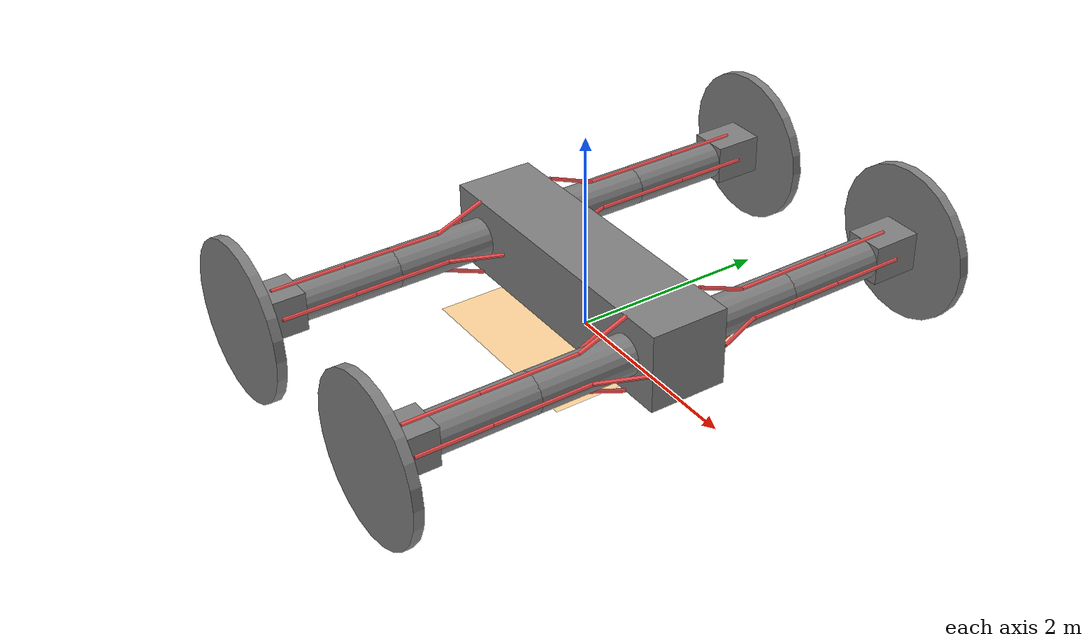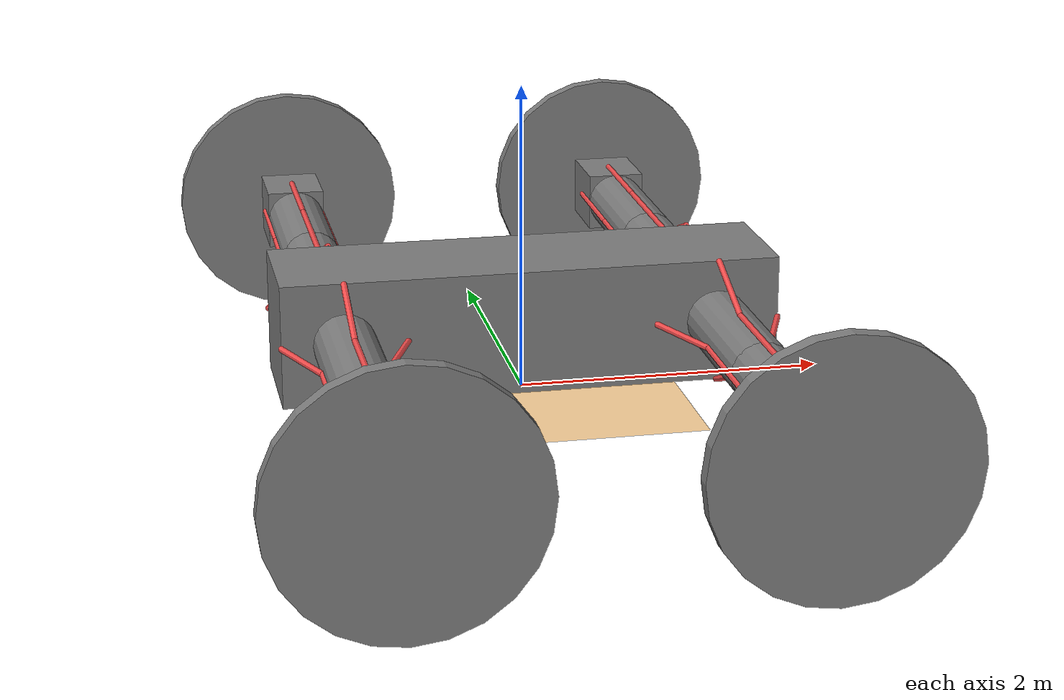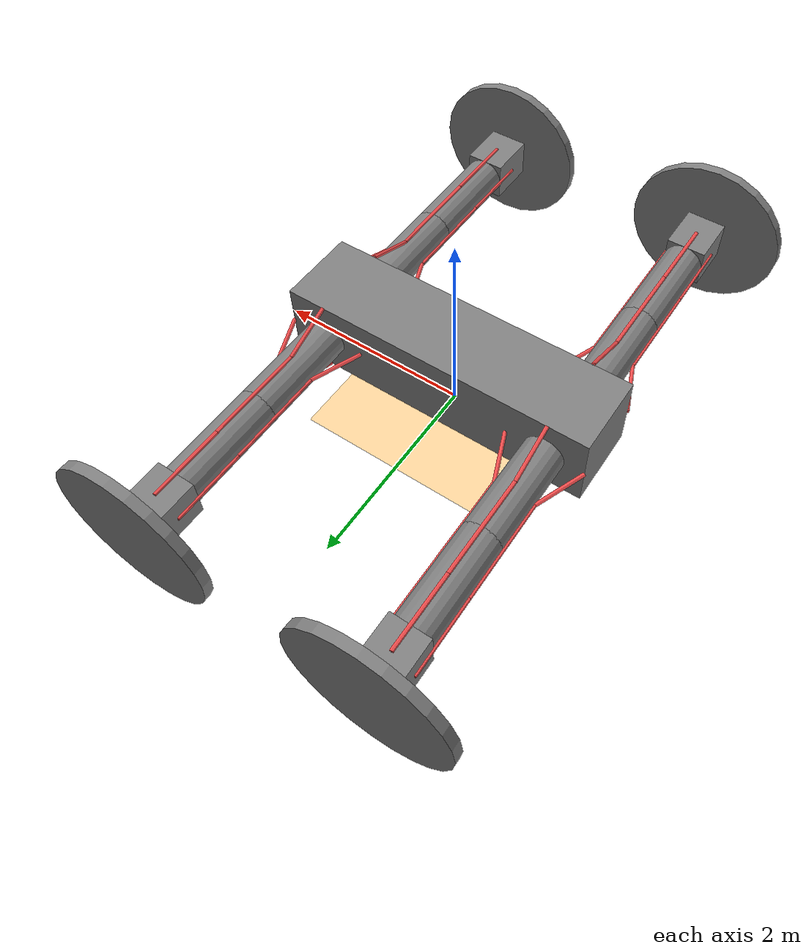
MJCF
<mujoco model="robot">
    <default >
        <geom conaffinity="0" condim="3" density="1.0" friction="1 0.5 0.5" margin="0.01" />
        <default class="leg">
            <joint type="hinge" range="-90 90" armature="1" damping="1" limited="true" frictionloss="10"/>
            <motor ctrlrange="-1 1" gear="100" forcerange="-100 100"/>
        </default>
        <default class="wheel">
            <joint type="hinge" armature="1" damping=".3" limited="false" frictionloss="0"/>
            <motor ctrlrange="-1 1" gear="100" forcerange="-150 150"/>
        </default>
    </default>
    <worldbody>
        <light directional="true" pos="-0.5 0.5 3" dir="0 0 -1" />
        <geom conaffinity="1" name="floor" pos="0 0 0" size="1 1 1" type="plane" rgba="1 0.83 0.61 0.5"/>
        <!-- 构建主体 -->
        <body name="torso" pos="0 0 0.5">
            <joint armature="0" damping="0" limited="false" margin="0.01" name="root" pos="0 0 0" type="free"/>
            <geom name="torso_geom" pos="0 0 0" type="box" size="1.6 0.4 0.4" />
            <!-- 构建主体肌肉节点 -->
            <site name="lf1_1" pos="1.2 0.4 0.4"/>
            <site name="lf1_2" pos="0.8 0.4 0.0"/>
            <site name="lf1_3" pos="1.2 0.4 -0.4"/>
            <site name="lf1_4" pos="1.6 0.4 0.0"/>

            <site name="rf1_1" pos="1.2 -0.4 0.4"/>
            <site name="rf1_2" pos="0.8 -0.4 0.0"/>
            <site name="rf1_3" pos="1.2 -0.4 -0.4"/>
            <site name="rf1_4" pos="1.6 -0.4 0.0"/>

            <site name="lb1_1" pos="-1.2 0.4 0.4"/>
            <site name="lb1_2" pos="-1.6 0.4 0.0"/>
            <site name="lb1_3" pos="-1.2 0.4 -0.4"/>
            <site name="lb1_4" pos="-0.8 0.4 0.0"/>

            <site name="rb1_1" pos="-1.2 -0.4 0.4"/>
            <site name="rb1_2" pos="-1.6 -0.4 0.0"/>
            <site name="rb1_3" pos="-1.2 -0.4 -0.4"/>
            <site name="rb1_4" pos="-0.8 -0.4 0.0"/>
            <!-- 构建左前1腿 -->
            <body name="lf_leg1" pos="1.2 0.9 0">
                <geom name="lf_leg1_geom" pos="0 0 0" fromto="0 -0.5 0 0 0.5 0" size="0.2" type="capsule"/>
                <joint axis="1 0 0" name="lf_leg1_Joint_x" pos="0 -0.5 0" class="leg"/>
                <joint axis="0 0 1" name="lf_leg1_Joint_z" pos="0 -0.5 0" class="leg"/>
                <!-- 构建左前1腿肌肉节点 -->
                <site name="lf1_1e" pos="0.0 0.0 0.2"/>
                <site name="lf1_2e" pos="-0.2 0.0 0.0"/>
                <site name="lf1_3e" pos="0.0 0.0 -0.2"/>
                <site name="lf1_4e" pos="0.2 0.0 0.0"/>
                <site name="lf2_1" pos="0.0 0.0 0.2"/>
                <site name="lf2_2" pos="-0.2 0.0 0.0"/>
                <site name="lf2_3" pos="0.0 0.0 -0.2"/>
                <site name="lf2_4" pos="0.2 0.0 0.0"/>
                <!-- 构建左前2腿 -->
                <body name="lf_leg2" pos="0 1 0">
                    <geom name="lf_leg2_geom" pos="0 0 0" fromto="0 -0.5 0 0 0.5 0" size="0.2" type="capsule"/>
                    <joint axis="1 0 0" name="lf_leg2_Joint_x" pos="0 -0.5 0" class="leg"/>
                    <joint axis="0 0 1" name="lf_leg2_Joint_z" pos="0 -0.5 0" class="leg"/>
                    <!-- 构建左前2腿肌肉节点 -->
                    <site name="lf2_1e" pos="0.0 0.0 0.2"/>
                    <site name="lf2_2e" pos="-0.2 0.0 0.0"/>
                    <site name="lf2_3e" pos="0.0 0.0 -0.2"/>
                    <site name="lf2_4e" pos="0.2 0.0 0.0"/>
                    <site name="lf3_1" pos="0.0 0.0 0.2"/>
                    <site name="lf3_2" pos="-0.2 0.0 0.0"/>
                    <site name="lf3_3" pos="0.0 0.0 -0.2"/>
                    <site name="lf3_4" pos="0.2 0.0 0.0"/>
                    <!-- 构建左前3腿 -->
                    <body name="lf_leg3" pos="0 0.75 0">
                        <geom name="lf_leg3_geom" pos="0 0 0" fromto="0 -0.25 0 0 0.25 0" size="0.2" type="box"/>
                        <joint axis="1 0 0" name="lf_leg3_Joint_x" pos="0 -0.25 0" class="leg"/>
                        <joint axis="0 0 1" name="lf_leg3_Joint_z" pos="0 -0.25 0" class="leg"/>
                        <!-- 构建左前3腿肌肉节点 -->
                        <site name="lf3_1e" pos="0.0 0.0 0.2"/>
                        <site name="lf3_2e" pos="-0.2 0.0 0.0"/>
                        <site name="lf3_3e" pos="0.0 0.0 -0.2"/>
                        <site name="lf3_4e" pos="0.2 0.0 0.0"/>
                        <body name ="lf_motor" pos="0 0.3 0">
                            <geom name ="lf_motor_geom" pos="0 0 0" type="cylinder" size="0.8" fromto="0 -0.05 0 0 0.05 0"/>
                            <joint axis="0 1 0" name="lf_motor_y" pos="0 -0.1 0" class="wheel"/>
                        </body>
                    </body>
                </body>
            </body>
            <!-- 构建右前1腿 -->
            <body name="rf_leg1" pos="1.2 -0.9 0">
                <geom name="rf_leg1_geom" pos="0 0 0" fromto="0 -0.5 0 0 0.5 0" size="0.2" type="capsule"/>
                <joint axis="1 0 0" name="rf_leg1_Joint_x" pos="0 0.5 0" class="leg"/>
                <joint axis="0 0 1" name="rf_leg1_Joint_z" pos="0 0.5 0" class="leg"/>

                <site name="rf1_1e" pos="0.0 0.0 0.2"/>
                <site name="rf1_2e" pos="-0.2 0.0 0.0"/>
                <site name="rf1_3e" pos="0.0 0.0 -0.2"/>
                <site name="rf1_4e" pos="0.2 0.0 0.0"/>
                <site name="rf2_1" pos="0.0 0.0 0.2"/>
                <site name="rf2_2" pos="-0.2 0.0 0.0"/>
                <site name="rf2_3" pos="0.0 0.0 -0.2"/>
                <site name="rf2_4" pos="0.2 0.0 0.0"/>
                <!-- 构建右前2腿 -->
                <body name="rf_leg2" pos="0 -1 0">
                    <geom name="rf_leg2_geom" pos="0 0 0" fromto="0 -0.5 0 0 0.5 0" size="0.2" type="capsule"/>
                    <joint axis="1 0 0" name="rf_leg2_Joint_x" pos="0 0.5 0" class="leg"/>
                    <joint axis="0 0 1" name="rf_leg2_Joint_z" pos="0 0.5 0" class="leg"/>
                    <site name="rf2_1e" pos="0.0 0.0 0.2"/>
                    <site name="rf2_2e" pos="-0.2 0.0 0.0"/>
                    <site name="rf2_3e" pos="0.0 0.0 -0.2"/>
                    <site name="rf2_4e" pos="0.2 0.0 0.0"/>
                    <site name="rf3_1" pos="0.0 0.0 0.2"/>
                    <site name="rf3_2" pos="-0.2 0.0 0.0"/>
                    <site name="rf3_3" pos="0.0 0.0 -0.2"/>
                    <site name="rf3_4" pos="0.2 0.0 0.0"/>
                    <!-- 构建右前3腿 -->
                    <body name="rf_leg3" pos="0 -0.75 0">
                        <geom name="rf_leg3_geom" pos="0 0 0" fromto="0 -0.25 0 0 0.25 0" size="0.2" type="box"/>
                        <joint axis="1 0 0" name="rf_leg3_Joint_x" pos="0 0.25 0" class="leg"/>
                        <joint axis="0 0 1" name="rf_leg3_Joint_z" pos="0 0.25 0" class="leg"/>
                        <site name="rf3_1e" pos="0.0 0.0 0.2"/>
                        <site name="rf3_2e" pos="-0.2 0.0 0.0"/>
                        <site name="rf3_3e" pos="0.0 0.0 -0.2"/>
                        <site name="rf3_4e" pos="0.2 0.0 0.0"/>
                        <body name ="rf_motor" pos="0 -0.3 0">
                            <geom name ="rf_motor_geom" pos="0 0 0" type="cylinder" size="0.8" fromto="0 -0.05 0 0 0.05 0"/>
                            <joint axis="0 1 0" name="rf_motor_y" pos="0 0.1 0" class="wheel"/>
                        </body>
                    </body>
                </body>
            </body>
            <!-- 构建左后1腿 -->
            <body name="lb_leg1" pos="-1.2 0.9 0">
                <geom name="lb_leg1_geom" pos="0 0 0" fromto="0 -0.5 0 0 0.5 0" size="0.2" type="capsule"/>
                <joint axis="1 0 0" name="lb_leg1_Joint_x" pos="0 -0.5 0" class="leg"/>
                <joint axis="0 0 1" name="lb_leg1_Joint_z" pos="0 -0.5 0" class="leg"/>
                <site name="lb1_1e" pos="0.0 0.0 0.2"/>
                <site name="lb1_2e" pos="-0.2 0.0 0.0"/>
                <site name="lb1_3e" pos="0.0 0.0 -0.2"/>
                <site name="lb1_4e" pos="0.2 0.0 0.0"/>
                <site name="lb2_1" pos="0.0 0.0 0.2"/>
                <site name="lb2_2" pos="-0.2 0.0 0.0"/>
                <site name="lb2_3" pos="0.0 0.0 -0.2"/>
                <site name="lb2_4" pos="0.2 0.0 0.0"/>
                <!-- 构建左后2腿 -->
                <body name="lb_leg2" pos="0 1 0">
                    <geom name="lb_leg2_geom" pos="0 0 0" fromto="0 -0.5 0 0 0.5 0" size="0.2" type="capsule"/>
                    <joint axis="1 0 0" name="lb_leg2_Joint_x" pos="0 -0.5 0" class="leg"/>
                    <joint axis="0 0 1" name="lb_leg2_Joint_z" pos="0 -0.5 0" class="leg"/>
                    <site name="lb2_1e" pos="0.0 0.0 0.2"/>
                    <site name="lb2_2e" pos="-0.2 0.0 0.0"/>
                    <site name="lb2_3e" pos="0.0 0.0 -0.2"/>
                    <site name="lb2_4e" pos="0.2 0.0 0.0"/>
                    <site name="lb3_1" pos="0.0 0.0 0.2"/>
                    <site name="lb3_2" pos="-0.2 0.0 0.0"/>
                    <site name="lb3_3" pos="0.0 0.0 -0.2"/>
                    <site name="lb3_4" pos="0.2 0.0 0.0"/>
                    <!-- 构建左后3腿 -->
                    <body name="lb_leg3" pos="0 0.75 0">
                        <geom name="lb_leg3_geom" pos="0 0 0" fromto="0 -0.25 0 0 0.25 0" size="0.2" type="box"/>
                        <joint axis="1 0 0" name="lb_leg3_Joint_x" pos="0 -0.25 0" class="leg"/>
                        <joint axis="0 0 1" name="lb_leg3_Joint_z" pos="0 -0.25 0" class="leg"/>
                        <site name="lb3_1e" pos="0.0 0.0 0.2"/>
                        <site name="lb3_2e" pos="-0.2 0.0 0.0"/>
                        <site name="lb3_3e" pos="0.0 0.0 -0.2"/>
                        <site name="lb3_4e" pos="0.2 0.0 0.0"/>
                        <body name ="lb_motor" pos="0 0.3 0">
                            <geom name ="lb_motor_geom" pos="0 0 0" type="cylinder" size="0.8" fromto="0 -0.05 0 0 0.05 0"/>
                            <joint axis="0 1 0" name="lb_motor_y" pos="0 -0.1 0" class="wheel"/>
                        </body>
                    </body>
                </body>
            </body>
            <!-- 构建右后1腿 -->
            <body name="rb_leg1" pos="-1.2 -0.9 0">
                <geom name="rb_leg1_geom" pos="0 0 0" fromto="0 -0.5 0 0 0.5 0" size="0.2" type="capsule"/>
                <joint axis="1 0 0" name="rb_leg1_Joint_x" pos="0 0.5 0" class="leg"/>
                <joint axis="0 0 1" name="rb_leg1_Joint_z" pos="0 0.5 0" class="leg"/>

                <site name="rb1_1e" pos="0.0 0.0 0.2"/>
                <site name="rb1_2e" pos="-0.2 0.0 0.0"/>
                <site name="rb1_3e" pos="0.0 0.0 -0.2"/>
                <site name="rb1_4e" pos="0.2 0.0 0.0"/>
                <site name="rb2_1" pos="0.0 0.0 0.2"/>
                <site name="rb2_2" pos="-0.2 0.0 0.0"/>
                <site name="rb2_3" pos="0.0 0.0 -0.2"/>
                <site name="rb2_4" pos="0.2 0.0 0.0"/>
                <!-- 构建右后2腿 -->
                <body name="rb_leg2" pos="0 -1 0">
                    <geom name="rb_leg2_geom" pos="0 0 0" fromto="0 -0.5 0 0 0.5 0" size="0.2" type="capsule"/>
                    <joint axis="1 0 0" name="rb_leg2_Joint_x" pos="0 0.5 0" class="leg"/>
                    <joint axis="0 0 1" name="rb_leg2_Joint_z" pos="0 0.5 0" class="leg"/>
                    <site name="rb2_1e" pos="0.0 0.0 0.2"/>
                    <site name="rb2_2e" pos="-0.2 0.0 0.0"/>
                    <site name="rb2_3e" pos="0.0 0.0 -0.2"/>
                    <site name="rb2_4e" pos="0.2 0.0 0.0"/>
                    <site name="rb3_1" pos="0.0 0.0 0.2"/>
                    <site name="rb3_2" pos="-0.2 0.0 0.0"/>
                    <site name="rb3_3" pos="0.0 0.0 -0.2"/>
                    <site name="rb3_4" pos="0.2 0.0 0.0"/>
                    <!-- 构建右后3腿 -->
                    <body name="rb_leg3" pos="0 -0.75 0">
                        <geom name="rb_leg3_geom" pos="0 0 0" fromto="0 -0.25 0 0 0.25 0" size="0.2" type="box"/>
                        <joint axis="1 0 0" name="rb_leg3_Joint_x" pos="0 0.25 0" class="leg"/>
                        <joint axis="0 0 1" name="rb_leg3_Joint_z" pos="0 0.25 0" class="leg"/>
                        <site name="rb3_1e" pos="0.0 0.0 0.2"/>
                        <site name="rb3_2e" pos="-0.2 0.0 0.0"/>
                        <site name="rb3_3e" pos="0.0 0.0 -0.2"/>
                        <site name="rb3_4e" pos="0.2 0.0 0.0"/>
                        <body name ="rb_motor" pos="0 -0.3 0">
                            <geom name ="rb_motor_geom" pos="0 0 0" type="cylinder" size="0.8" fromto="0 -0.05 0 0 0.05 0"/>
                            <joint axis="0 1 0" name="rb_motor_y" pos="0 0.1 0" class="wheel"/>
                        </body>
                    </body>
                </body>
            </body>

        </body>
    </worldbody>
    <!-- 肌肉 -->
    <tendon>
        <!-- 构建左前1腿肌肉组 -->
        <spatial name="lf1_1" width=".02" rgba=".95 .3 .3 1">
            <site site="lf1_1"/>
            <site site="lf1_1e"/>
        </spatial>
        <spatial name="lf1_2" width=".02" rgba=".95 .3 .3 1">
            <site site="lf1_2"/>
            <site site="lf1_2e"/>
        </spatial>
        <spatial name="lf1_3" width=".02" rgba=".95 .3 .3 1">
            <site site="lf1_3"/>
            <site site="lf1_3e"/>
        </spatial>
        <spatial name="lf1_4" width=".02" rgba=".95 .3 .3 1">
            <site site="lf1_4"/>
            <site site="lf1_4e"/>
        </spatial>
        <!-- 构建左前2腿肌肉组 -->
        <spatial name="lf2_1" width=".02" rgba=".95 .3 .3 1">
            <site site="lf2_1"/>
            <site site="lf2_1e"/>
        </spatial>
        <spatial name="lf2_2" width=".02" rgba=".95 .3 .3 1">
            <site site="lf2_2"/>
            <site site="lf2_2e"/>
        </spatial>
        <spatial name="lf2_3" width=".02" rgba=".95 .3 .3 1">
            <site site="lf2_3"/>
            <site site="lf2_3e"/>
        </spatial>
        <spatial name="lf2_4" width=".02" rgba=".95 .3 .3 1">
            <site site="lf2_4"/>
            <site site="lf2_4e"/>
        </spatial>
        <!-- 构建左前3腿肌肉组 -->
        <spatial name="lf3_1" width=".02" rgba=".95 .3 .3 1">
            <site site="lf3_1"/>
            <site site="lf3_1e"/>
        </spatial>
        <spatial name="lf3_2" width=".02" rgba=".95 .3 .3 1">
            <site site="lf3_2"/>
            <site site="lf3_2e"/>
        </spatial>
        <spatial name="lf3_3" width=".02" rgba=".95 .3 .3 1">
            <site site="lf3_3"/>
            <site site="lf3_3e"/>
        </spatial>
        <spatial name="lf3_4" width=".02" rgba=".95 .3 .3 1">
            <site site="lf3_4"/>
            <site site="lf3_4e"/>
        </spatial>

        <!-- 构建右前1腿肌肉组 -->
        <spatial name="rf1_1" width=".02" rgba=".95 .3 .3 1">
            <site site="rf1_1"/>
            <site site="rf1_1e"/>
        </spatial>
        <spatial name="rf1_2" width=".02" rgba=".95 .3 .3 1">
            <site site="rf1_2"/>
            <site site="rf1_2e"/>
        </spatial>
        <spatial name="rf1_3" width=".02" rgba=".95 .3 .3 1">
            <site site="rf1_3"/>
            <site site="rf1_3e"/>
        </spatial>
        <spatial name="rf1_4" width=".02" rgba=".95 .3 .3 1">
            <site site="rf1_4"/>
            <site site="rf1_4e"/>
        </spatial>
        <!-- 构建右前2腿肌肉组 -->
        <spatial name="rf2_1" width=".02" rgba=".95 .3 .3 1">
            <site site="rf2_1"/>
            <site site="rf2_1e"/>
        </spatial>
        <spatial name="rf2_2" width=".02" rgba=".95 .3 .3 1">
            <site site="rf2_2"/>
            <site site="rf2_2e"/>
        </spatial>
        <spatial name="rf2_3" width=".02" rgba=".95 .3 .3 1">
            <site site="rf2_3"/>
            <site site="rf2_3e"/>
        </spatial>
        <spatial name="rf2_4" width=".02" rgba=".95 .3 .3 1">
            <site site="rf2_4"/>
            <site site="rf2_4e"/>
        </spatial>
        <!-- 构建右前3腿肌肉组 -->
        <spatial name="rf3_1" width=".02" rgba=".95 .3 .3 1">
            <site site="rf3_1"/>
            <site site="rf3_1e"/>
        </spatial>
        <spatial name="rf3_2" width=".02" rgba=".95 .3 .3 1">
            <site site="rf3_2"/>
            <site site="rf3_2e"/>
        </spatial>
        <spatial name="rf3_3" width=".02" rgba=".95 .3 .3 1">
            <site site="rf3_3"/>
            <site site="rf3_3e"/>
        </spatial>
        <spatial name="rf3_4" width=".02" rgba=".95 .3 .3 1">
            <site site="rf3_4"/>
            <site site="rf3_4e"/>
        </spatial>

        <!-- 构建左后1腿肌肉组 -->
        <spatial name="lb1_1" width=".02" rgba=".95 .3 .3 1">
            <site site="lb1_1"/>
            <site site="lb1_1e"/>
        </spatial>
        <spatial name="lb1_2" width=".02" rgba=".95 .3 .3 1">
            <site site="lb1_2"/>
            <site site="lb1_2e"/>
        </spatial>
        <spatial name="lb1_3" width=".02" rgba=".95 .3 .3 1">
            <site site="lb1_3"/>
            <site site="lb1_3e"/>
        </spatial>
        <spatial name="lb1_4" width=".02" rgba=".95 .3 .3 1">
            <site site="lb1_4"/>
            <site site="lb1_4e"/>
        </spatial>
        <!-- 构建左后2腿肌肉组 -->
        <spatial name="lb2_1" width=".02" rgba=".95 .3 .3 1">
            <site site="lb2_1"/>
            <site site="lb2_1e"/>
        </spatial>
        <spatial name="lb2_2" width=".02" rgba=".95 .3 .3 1">
            <site site="lb2_2"/>
            <site site="lb2_2e"/>
        </spatial>
        <spatial name="lb2_3" width=".02" rgba=".95 .3 .3 1">
            <site site="lb2_3"/>
            <site site="lb2_3e"/>
        </spatial>
        <spatial name="lb2_4" width=".02" rgba=".95 .3 .3 1">
            <site site="lb2_4"/>
            <site site="lb2_4e"/>
        </spatial>
        <!-- 构建左后3腿肌肉组 -->
        <spatial name="lb3_1" width=".02" rgba=".95 .3 .3 1">
            <site site="lb3_1"/>
            <site site="lb3_1e"/>
        </spatial>
        <spatial name="lb3_2" width=".02" rgba=".95 .3 .3 1">
            <site site="lb3_2"/>
            <site site="lb3_2e"/>
        </spatial>
        <spatial name="lb3_3" width=".02" rgba=".95 .3 .3 1">
            <site site="lb3_3"/>
            <site site="lb3_3e"/>
        </spatial>
        <spatial name="lb3_4" width=".02" rgba=".95 .3 .3 1">
            <site site="lb3_4"/>
            <site site="lb3_4e"/>
        </spatial>

        <!-- 构建右后1腿肌肉组 -->
        <spatial name="rb1_1" width=".02" rgba=".95 .3 .3 1">
            <site site="rb1_1"/>
            <site site="rb1_1e"/>
        </spatial>
        <spatial name="rb1_2" width=".02" rgba=".95 .3 .3 1">
            <site site="rb1_2"/>
            <site site="rb1_2e"/>
        </spatial>
        <spatial name="rb1_3" width=".02" rgba=".95 .3 .3 1">
            <site site="rb1_3"/>
            <site site="rb1_3e"/>
        </spatial>
        <spatial name="rb1_4" width=".02" rgba=".95 .3 .3 1">
            <site site="rb1_4"/>
            <site site="rb1_4e"/>
        </spatial>
        <!-- 构建右后2腿肌肉组 -->
        <spatial name="rb2_1" width=".02" rgba=".95 .3 .3 1">
            <site site="rb2_1"/>
            <site site="rb2_1e"/>
        </spatial>
        <spatial name="rb2_2" width=".02" rgba=".95 .3 .3 1">
            <site site="rb2_2"/>
            <site site="rb2_2e"/>
        </spatial>
        <spatial name="rb2_3" width=".02" rgba=".95 .3 .3 1">
            <site site="rb2_3"/>
            <site site="rb2_3e"/>
        </spatial>
        <spatial name="rb2_4" width=".02" rgba=".95 .3 .3 1">
            <site site="rb2_4"/>
            <site site="rb2_4e"/>
        </spatial>
        <!-- 构建右后2腿肌肉组 -->
        <spatial name="rb3_1" width=".02" rgba=".95 .3 .3 1">
            <site site="rb3_1"/>
            <site site="rb3_1e"/>
        </spatial>
        <spatial name="rb3_2" width=".02" rgba=".95 .3 .3 1">
            <site site="rb3_2"/>
            <site site="rb3_2e"/>
        </spatial>
        <spatial name="rb3_3" width=".02" rgba=".95 .3 .3 1">
            <site site="rb3_3"/>
            <site site="rb3_3e"/>
        </spatial>
        <spatial name="rb3_4" width=".02" rgba=".95 .3 .3 1">
            <site site="rb3_4"/>
            <site site="rb3_4e"/>
        </spatial>
    </tendon>
    <actuator>
        <!-- 构建左前肌肉组驱动 -->
        <muscle name="lfm1_1" tendon="lf1_1"/>
        <muscle name="lfm1_2" tendon="lf1_2"/>
        <muscle name="lfm1_3" tendon="lf1_3"/>
        <muscle name="lfm1_4" tendon="lf1_4"/>

        <muscle name="lfm2_1" tendon="lf2_1"/>
        <muscle name="lfm2_2" tendon="lf2_2"/>
        <muscle name="lfm2_3" tendon="lf2_3"/>
        <muscle name="lfm2_4" tendon="lf2_4"/>

        <muscle name="lfm3_1" tendon="lf3_1"/>
        <muscle name="lfm3_2" tendon="lf3_2"/>
        <muscle name="lfm3_3" tendon="lf3_3"/>
        <muscle name="lfm3_4" tendon="lf3_4"/>
        <!-- 构建左后肌肉组驱动 -->
        <muscle name="lbm1_1" tendon="lb1_1"/>
        <muscle name="lbm1_2" tendon="lb1_2"/>
        <muscle name="lbm1_3" tendon="lb1_3"/>
        <muscle name="lbm1_4" tendon="lb1_4"/>

        <muscle name="lbm2_1" tendon="lb2_1"/>
        <muscle name="lbm2_2" tendon="lb2_2"/>
        <muscle name="lbm2_3" tendon="lb2_3"/>
        <muscle name="lbm2_4" tendon="lb2_4"/>

        <muscle name="lbm3_1" tendon="lb3_1"/>
        <muscle name="lbm3_2" tendon="lb3_2"/>
        <muscle name="lbm3_3" tendon="lb3_3"/>
        <muscle name="lbm3_4" tendon="lb3_4"/>
        <!-- 构建右前肌肉组驱动 -->
        <muscle name="rfm1_1" tendon="rf1_1"/>
        <muscle name="rfm1_2" tendon="rf1_2"/>
        <muscle name="rfm1_3" tendon="rf1_3"/>
        <muscle name="rfm1_4" tendon="rf1_4"/>

        <muscle name="rfm2_1" tendon="rf2_1"/>
        <muscle name="rfm2_2" tendon="rf2_2"/>
        <muscle name="rfm2_3" tendon="rf2_3"/>
        <muscle name="rfm2_4" tendon="rf2_4"/>

        <muscle name="rfm3_1" tendon="rf3_1"/>
        <muscle name="rfm3_2" tendon="rf3_2"/>
        <muscle name="rfm3_3" tendon="rf3_3"/>
        <muscle name="rfm3_4" tendon="rf3_4"/>
        <!-- 构建右后肌肉组驱动 -->
        <muscle name="rbm1_1" tendon="rb1_1"/>
        <muscle name="rbm1_2" tendon="rb1_2"/>
        <muscle name="rbm1_3" tendon="rb1_3"/>
        <muscle name="rbm1_4" tendon="rb1_4"/>

        <muscle name="rbm2_1" tendon="rb2_1"/>
        <muscle name="rbm2_2" tendon="rb2_2"/>
        <muscle name="rbm2_3" tendon="rb2_3"/>
        <muscle name="rbm2_4" tendon="rb2_4"/>

        <muscle name="rbm3_1" tendon="rb3_1"/>
        <muscle name="rbm3_2" tendon="rb3_2"/>
        <muscle name="rbm3_3" tendon="rb3_3"/>
        <muscle name="rbm3_4" tendon="rb3_4"/>

        <motor name="lf_motor" joint="lf_motor_y" class="wheel"/>
        <motor name="rf_motor" joint="rf_motor_y" class="wheel"/>
        <motor name="lb_motor" joint="lb_motor_y" class="wheel"/>
        <motor name="rb_motor" joint="rb_motor_y" class="wheel"/>
    </actuator>
</mujoco>
